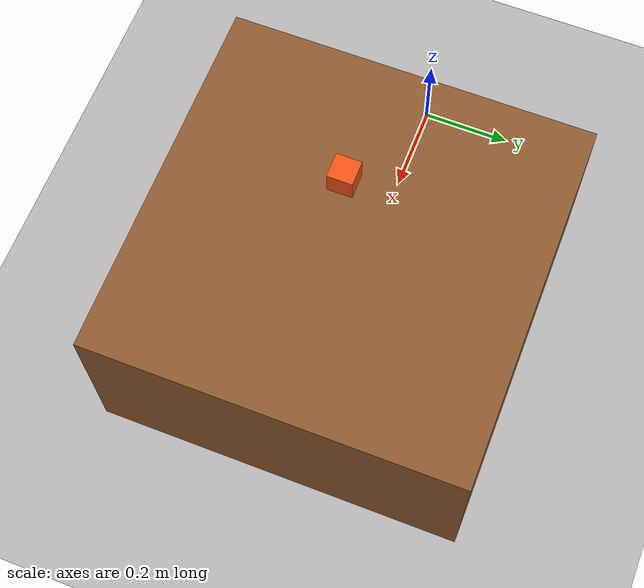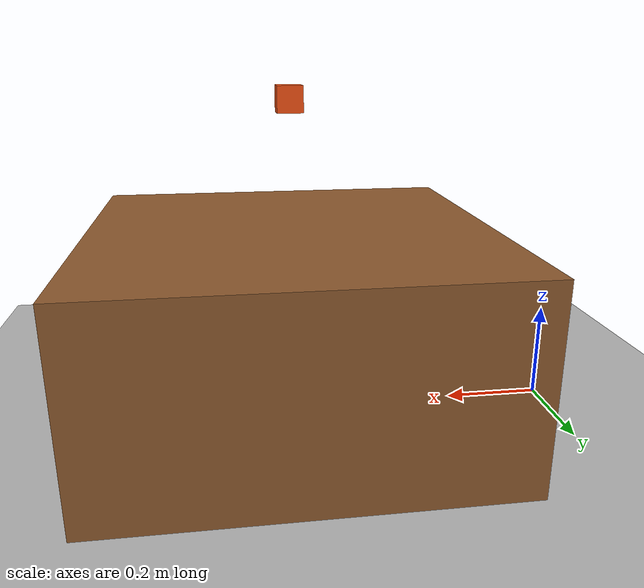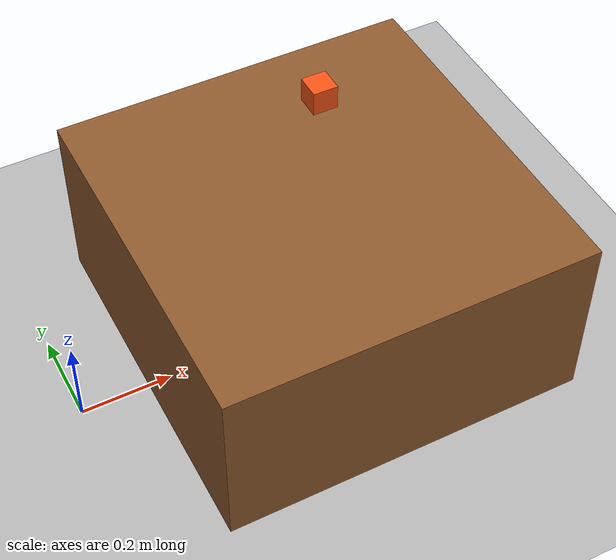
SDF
<?xml version="1.0" ?>
<sdf version="1.8">
  <world name="panda_pick_world">

    <!-- Physics configuration -->
    <physics name="1ms_physics" type="ignored">
      <max_step_size>0.001</max_step_size>
      <real_time_factor>1.0</real_time_factor>
    </physics>

    <gravity>0 0 -9.81</gravity>

    <!-- Required Gazebo systems -->
    <plugin
      filename="libignition-gazebo-physics-system.so"
      name="ignition::gazebo::systems::Physics"/>

    <plugin
      filename="libignition-gazebo-user-commands-system.so"
      name="ignition::gazebo::systems::UserCommands"/>

    <plugin
      filename="libignition-gazebo-scene-broadcaster-system.so"
      name="ignition::gazebo::systems::SceneBroadcaster"/>

    <!-- Lighting -->
    <light type="directional" name="sun">
      <cast_shadows>true</cast_shadows>
      <pose>0 0 10 0 0 0</pose>
      <diffuse>0.9 0.9 0.9 1</diffuse>
      <specular>0.2 0.2 0.2 1</specular>
      <attenuation>
        <range>1000</range>
        <constant>0.9</constant>
        <linear>0.01</linear>
        <quadratic>0.001</quadratic>
      </attenuation>
      <direction>-0.5 0.2 -1.0</direction>
    </light>

    <!-- Ground -->
    <model name="ground_plane">
      <static>true</static>
      <link name="ground_link">
        <collision name="ground_collision">
          <geometry>
            <plane>
              <normal>0 0 1</normal>
              <size>20 20</size>
            </plane>
          </geometry>
        </collision>

        <visual name="ground_visual">
          <geometry>
            <plane>
              <normal>0 0 1</normal>
              <size>20 20</size>
            </plane>
          </geometry>
          <material>
            <ambient>0.7 0.7 0.7 1</ambient>
            <diffuse>0.7 0.7 0.7 1</diffuse>
          </material>
        </visual>
      </link>
    </model>

    <!-- Static table: top surface is at z = 0.40 m -->
    <model name="table">
      <static>true</static>
      <pose>0.55 0 0.20 0 0 0</pose>

      <link name="table_link">
        <collision name="table_collision">
          <geometry>
            <box>
              <size>0.80 0.80 0.40</size>
            </box>
          </geometry>
        </collision>

        <visual name="table_visual">
          <geometry>
            <box>
              <size>0.80 0.80 0.40</size>
            </box>
          </geometry>
          <material>
            <ambient>0.35 0.22 0.12 1</ambient>
            <diffuse>0.55 0.35 0.18 1</diffuse>
          </material>
        </visual>
      </link>
    </model>

    <!-- Dynamic cube: initially suspended above the table -->
    <model name="test_cube">
      <static>false</static>
      <pose>0.55 0 0.65 0 0 0</pose>

      <link name="cube_link">
        <inertial>
          <mass>0.10</mass>
          <inertia>
            <ixx>0.00004167</ixx>
            <iyy>0.00004167</iyy>
            <izz>0.00004167</izz>
            <ixy>0</ixy>
            <ixz>0</ixz>
            <iyz>0</iyz>
          </inertia>
        </inertial>

        <collision name="cube_collision">
          <geometry>
            <box>
              <size>0.05 0.05 0.05</size>
            </box>
          </geometry>
        </collision>

        <visual name="cube_visual">
          <geometry>
            <box>
              <size>0.05 0.05 0.05</size>
            </box>
          </geometry>
          <material>
            <ambient>0.85 0.25 0.08 1</ambient>
            <diffuse>0.95 0.32 0.08 1</diffuse>
          </material>
        </visual>
      </link>
    </model>

  </world>
</sdf>
